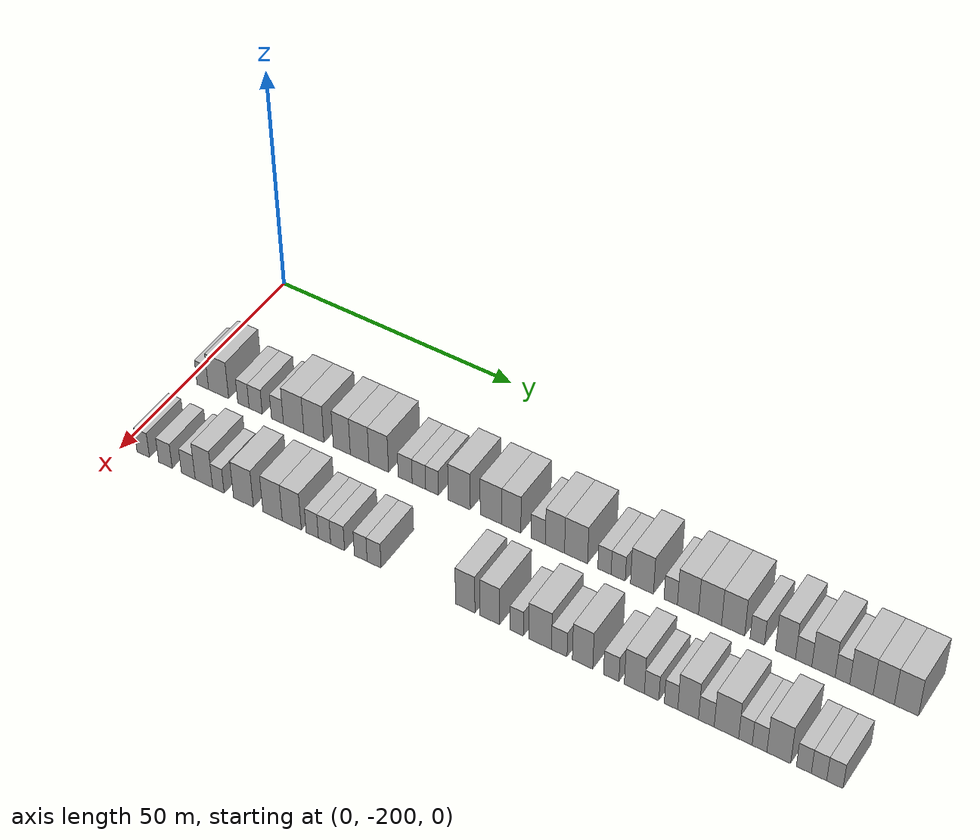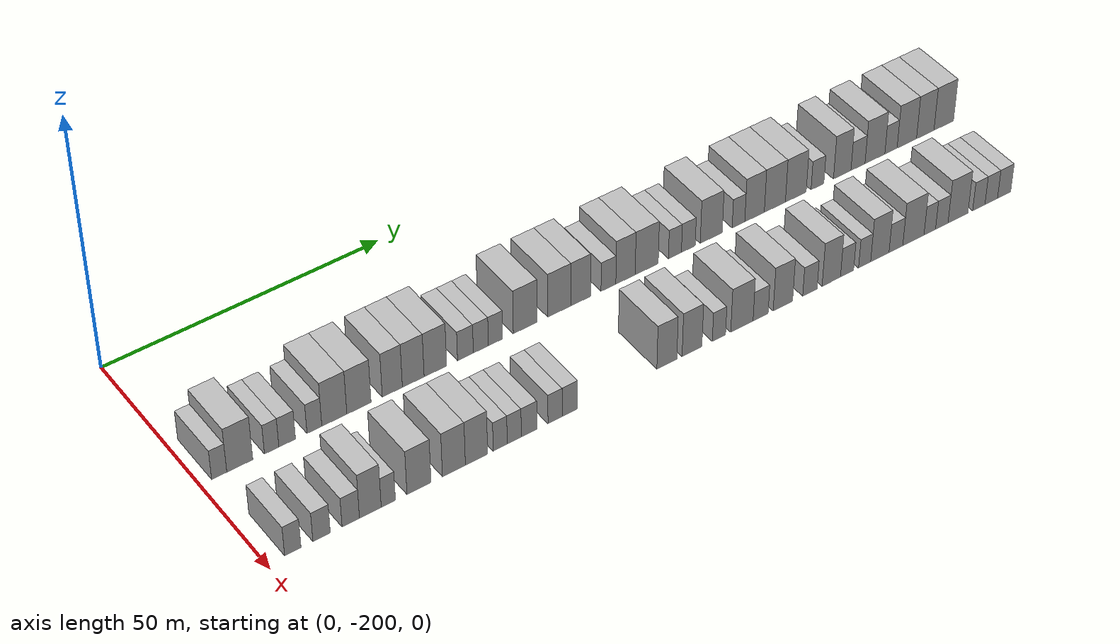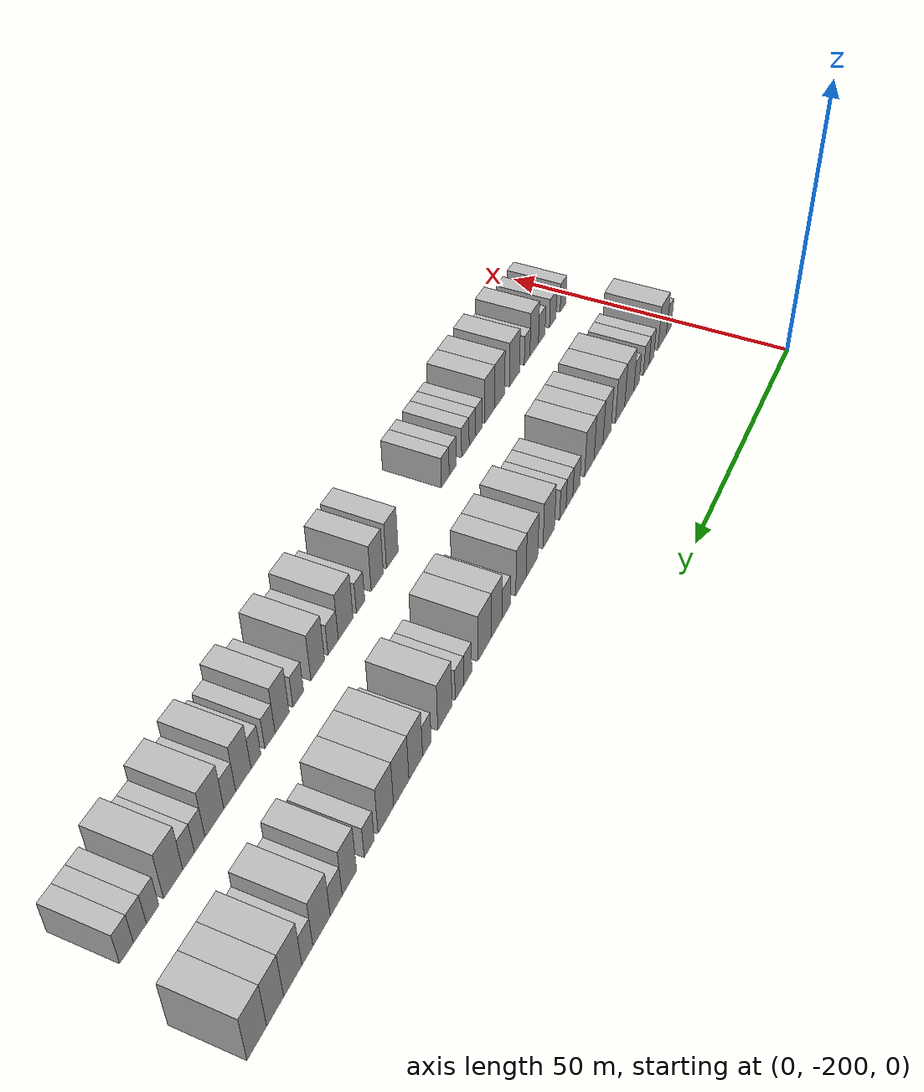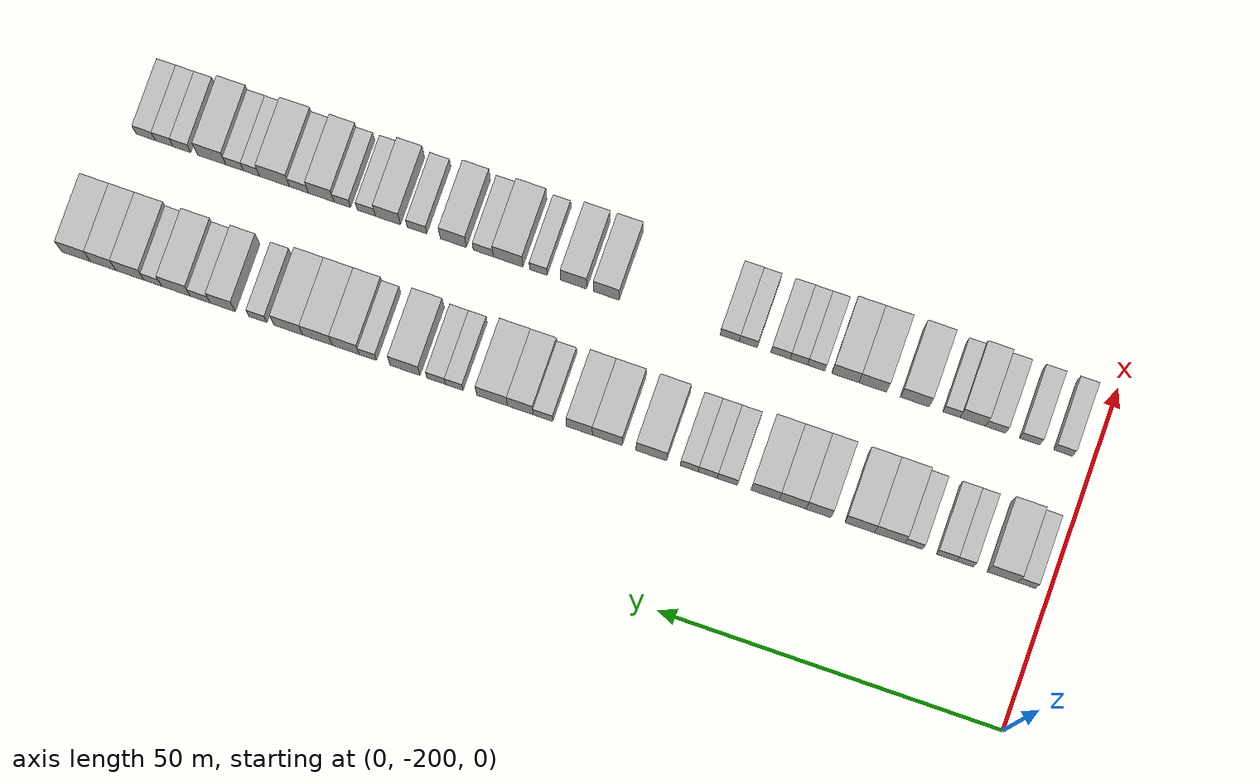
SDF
<sdf version="1.6">
 <world name="default">
  <model name="building_1">
   <static>1</static>
   <pose>25.0000 -196.7132 0 0.000000 0.000000 0.000000</pose>
   <link name="link">
    <pose>0 0 3.00 0 0 0</pose>
    <collision name="collision"><geometry><box><size>10.0000 2.5736 6.0000</size></box></geometry></collision>
    <visual name="visual">
     <cast_shadows>0</cast_shadows>
     <geometry><box><size>10.0000 2.5736 6.0000</size></box></geometry>
     <material>
      <script>
       <uri>model://HANNAS_wall/materials/scripts</uri>
       <uri>model://HANNAS_wall/materials/textures</uri>
       <name>vrc/HANNAS_wall</name>
      </script>
     </material>
    </visual>
   </link>
  </model>
  <model name="building_2">
   <static>1</static>
   <pose>25.0000 -193.2047 0 0.000000 0.000000 0.000000</pose>
   <link name="link">
    <pose>0 0 4.50 0 0 0</pose>
    <collision name="collision"><geometry><box><size>10.0000 4.4435 9.0000</size></box></geometry></collision>
    <visual name="visual">
     <cast_shadows>0</cast_shadows>
     <geometry><box><size>10.0000 4.4435 9.0000</size></box></geometry>
     <material>
      <script>
       <uri>model://HANNAS_wall/materials/scripts</uri>
       <uri>model://HANNAS_wall/materials/textures</uri>
       <name>vrc/HANNAS_wall</name>
      </script>
     </material>
    </visual>
   </link>
  </model>
  <model name="building_3">
   <static>1</static>
   <pose>25.0000 -187.7370 0 0.000000 0.000000 0.000000</pose>
   <link name="link">
    <pose>0 0 3.00 0 0 0</pose>
    <collision name="collision"><geometry><box><size>10.0000 2.4917 6.0000</size></box></geometry></collision>
    <visual name="visual">
     <cast_shadows>0</cast_shadows>
     <geometry><box><size>10.0000 2.4917 6.0000</size></box></geometry>
     <material>
      <script>
       <uri>model://HANNAS_wall/materials/scripts</uri>
       <uri>model://HANNAS_wall/materials/textures</uri>
       <name>vrc/HANNAS_wall</name>
      </script>
     </material>
    </visual>
   </link>
  </model>
  <model name="building_4">
   <static>1</static>
   <pose>25.0000 -185.0531 0 0.000000 0.000000 0.000000</pose>
   <link name="link">
    <pose>0 0 3.00 0 0 0</pose>
    <collision name="collision"><geometry><box><size>10.0000 2.8762 6.0000</size></box></geometry></collision>
    <visual name="visual">
     <cast_shadows>0</cast_shadows>
     <geometry><box><size>10.0000 2.8762 6.0000</size></box></geometry>
     <material>
      <script>
       <uri>model://HANNAS_wall/materials/scripts</uri>
       <uri>model://HANNAS_wall/materials/textures</uri>
       <name>vrc/HANNAS_wall</name>
      </script>
     </material>
    </visual>
   </link>
  </model>
  <model name="building_5">
   <static>1</static>
   <pose>25.0000 -180.3151 0 0.000000 0.000000 0.000000</pose>
   <link name="link">
    <pose>0 0 3.00 0 0 0</pose>
    <collision name="collision"><geometry><box><size>10.0000 2.5999 6.0000</size></box></geometry></collision>
    <visual name="visual">
     <cast_shadows>0</cast_shadows>
     <geometry><box><size>10.0000 2.5999 6.0000</size></box></geometry>
     <material>
      <script>
       <uri>model://HANNAS_wall/materials/scripts</uri>
       <uri>model://HANNAS_wall/materials/textures</uri>
       <name>vrc/HANNAS_wall</name>
      </script>
     </material>
    </visual>
   </link>
  </model>
  <model name="building_6">
   <static>1</static>
   <pose>25.0000 -176.8122 0 0.000000 0.000000 0.000000</pose>
   <link name="link">
    <pose>0 0 4.50 0 0 0</pose>
    <collision name="collision"><geometry><box><size>10.0000 4.4058 9.0000</size></box></geometry></collision>
    <visual name="visual">
     <cast_shadows>0</cast_shadows>
     <geometry><box><size>10.0000 4.4058 9.0000</size></box></geometry>
     <material>
      <script>
       <uri>model://HANNAS_wall/materials/scripts</uri>
       <uri>model://HANNAS_wall/materials/textures</uri>
       <name>vrc/HANNAS_wall</name>
      </script>
     </material>
    </visual>
   </link>
  </model>
  <model name="building_7">
   <static>1</static>
   <pose>25.0000 -172.4604 0 0.000000 0.000000 0.000000</pose>
   <link name="link">
    <pose>0 0 4.50 0 0 0</pose>
    <collision name="collision"><geometry><box><size>10.0000 4.2978 9.0000</size></box></geometry></collision>
    <visual name="visual">
     <cast_shadows>0</cast_shadows>
     <geometry><box><size>10.0000 4.2978 9.0000</size></box></geometry>
     <material>
      <script>
       <uri>model://HANNAS_wall/materials/scripts</uri>
       <uri>model://HANNAS_wall/materials/textures</uri>
       <name>vrc/HANNAS_wall</name>
      </script>
     </material>
    </visual>
   </link>
  </model>
  <model name="building_8">
   <static>1</static>
   <pose>25.0000 -166.5079 0 0.000000 0.000000 0.000000</pose>
   <link name="link">
    <pose>0 0 4.50 0 0 0</pose>
    <collision name="collision"><geometry><box><size>10.0000 3.6071 9.0000</size></box></geometry></collision>
    <visual name="visual">
     <cast_shadows>0</cast_shadows>
     <geometry><box><size>10.0000 3.6071 9.0000</size></box></geometry>
     <material>
      <script>
       <uri>model://HANNAS_wall/materials/scripts</uri>
       <uri>model://HANNAS_wall/materials/textures</uri>
       <name>vrc/HANNAS_wall</name>
      </script>
     </material>
    </visual>
   </link>
  </model>
  <model name="building_9">
   <static>1</static>
   <pose>25.0000 -162.7397 0 0.000000 0.000000 0.000000</pose>
   <link name="link">
    <pose>0 0 4.50 0 0 0</pose>
    <collision name="collision"><geometry><box><size>10.0000 3.9293 9.0000</size></box></geometry></collision>
    <visual name="visual">
     <cast_shadows>0</cast_shadows>
     <geometry><box><size>10.0000 3.9293 9.0000</size></box></geometry>
     <material>
      <script>
       <uri>model://HANNAS_wall/materials/scripts</uri>
       <uri>model://HANNAS_wall/materials/textures</uri>
       <name>vrc/HANNAS_wall</name>
      </script>
     </material>
    </visual>
   </link>
  </model>
  <model name="building_10">
   <static>1</static>
   <pose>25.0000 -158.7315 0 0.000000 0.000000 0.000000</pose>
   <link name="link">
    <pose>0 0 4.50 0 0 0</pose>
    <collision name="collision"><geometry><box><size>10.0000 4.0873 9.0000</size></box></geometry></collision>
    <visual name="visual">
     <cast_shadows>0</cast_shadows>
     <geometry><box><size>10.0000 4.0873 9.0000</size></box></geometry>
     <material>
      <script>
       <uri>model://HANNAS_wall/materials/scripts</uri>
       <uri>model://HANNAS_wall/materials/textures</uri>
       <name>vrc/HANNAS_wall</name>
      </script>
     </material>
    </visual>
   </link>
  </model>
  <model name="building_11">
   <static>1</static>
   <pose>25.0000 -153.2360 0 0.000000 0.000000 0.000000</pose>
   <link name="link">
    <pose>0 0 3.00 0 0 0</pose>
    <collision name="collision"><geometry><box><size>10.0000 2.9037 6.0000</size></box></geometry></collision>
    <visual name="visual">
     <cast_shadows>0</cast_shadows>
     <geometry><box><size>10.0000 2.9037 6.0000</size></box></geometry>
     <material>
      <script>
       <uri>model://HANNAS_wall/materials/scripts</uri>
       <uri>model://HANNAS_wall/materials/textures</uri>
       <name>vrc/HANNAS_wall</name>
      </script>
     </material>
    </visual>
   </link>
  </model>
  <model name="building_12">
   <static>1</static>
   <pose>25.0000 -150.3929 0 0.000000 0.000000 0.000000</pose>
   <link name="link">
    <pose>0 0 3.00 0 0 0</pose>
    <collision name="collision"><geometry><box><size>10.0000 2.7824 6.0000</size></box></geometry></collision>
    <visual name="visual">
     <cast_shadows>0</cast_shadows>
     <geometry><box><size>10.0000 2.7824 6.0000</size></box></geometry>
     <material>
      <script>
       <uri>model://HANNAS_wall/materials/scripts</uri>
       <uri>model://HANNAS_wall/materials/textures</uri>
       <name>vrc/HANNAS_wall</name>
      </script>
     </material>
    </visual>
   </link>
  </model>
  <model name="building_13">
   <static>1</static>
   <pose>25.0000 -147.6859 0 0.000000 0.000000 0.000000</pose>
   <link name="link">
    <pose>0 0 3.00 0 0 0</pose>
    <collision name="collision"><geometry><box><size>10.0000 2.6316 6.0000</size></box></geometry></collision>
    <visual name="visual">
     <cast_shadows>0</cast_shadows>
     <geometry><box><size>10.0000 2.6316 6.0000</size></box></geometry>
     <material>
      <script>
       <uri>model://HANNAS_wall/materials/scripts</uri>
       <uri>model://HANNAS_wall/materials/textures</uri>
       <name>vrc/HANNAS_wall</name>
      </script>
     </material>
    </visual>
   </link>
  </model>
  <model name="building_14">
   <static>1</static>
   <pose>25.0000 -142.1304 0 0.000000 0.000000 0.000000</pose>
   <link name="link">
    <pose>0 0 4.50 0 0 0</pose>
    <collision name="collision"><geometry><box><size>10.0000 4.4795 9.0000</size></box></geometry></collision>
    <visual name="visual">
     <cast_shadows>0</cast_shadows>
     <geometry><box><size>10.0000 4.4795 9.0000</size></box></geometry>
     <material>
      <script>
       <uri>model://HANNAS_wall/materials/scripts</uri>
       <uri>model://HANNAS_wall/materials/textures</uri>
       <name>vrc/HANNAS_wall</name>
      </script>
     </material>
    </visual>
   </link>
  </model>
  <model name="building_15">
   <static>1</static>
   <pose>25.0000 -135.7081 0 0.000000 0.000000 0.000000</pose>
   <link name="link">
    <pose>0 0 4.50 0 0 0</pose>
    <collision name="collision"><geometry><box><size>10.0000 4.3652 9.0000</size></box></geometry></collision>
    <visual name="visual">
     <cast_shadows>0</cast_shadows>
     <geometry><box><size>10.0000 4.3652 9.0000</size></box></geometry>
     <material>
      <script>
       <uri>model://HANNAS_wall/materials/scripts</uri>
       <uri>model://HANNAS_wall/materials/textures</uri>
       <name>vrc/HANNAS_wall</name>
      </script>
     </material>
    </visual>
   </link>
  </model>
  <model name="building_16">
   <static>1</static>
   <pose>25.0000 -131.6402 0 0.000000 0.000000 0.000000</pose>
   <link name="link">
    <pose>0 0 4.50 0 0 0</pose>
    <collision name="collision"><geometry><box><size>10.0000 3.7705 9.0000</size></box></geometry></collision>
    <visual name="visual">
     <cast_shadows>0</cast_shadows>
     <geometry><box><size>10.0000 3.7705 9.0000</size></box></geometry>
     <material>
      <script>
       <uri>model://HANNAS_wall/materials/scripts</uri>
       <uri>model://HANNAS_wall/materials/textures</uri>
       <name>vrc/HANNAS_wall</name>
      </script>
     </material>
    </visual>
   </link>
  </model>
  <model name="building_17">
   <static>1</static>
   <pose>25.0000 -126.3235 0 0.000000 0.000000 0.000000</pose>
   <link name="link">
    <pose>0 0 3.00 0 0 0</pose>
    <collision name="collision"><geometry><box><size>10.0000 2.8627 6.0000</size></box></geometry></collision>
    <visual name="visual">
     <cast_shadows>0</cast_shadows>
     <geometry><box><size>10.0000 2.8627 6.0000</size></box></geometry>
     <material>
      <script>
       <uri>model://HANNAS_wall/materials/scripts</uri>
       <uri>model://HANNAS_wall/materials/textures</uri>
       <name>vrc/HANNAS_wall</name>
      </script>
     </material>
    </visual>
   </link>
  </model>
  <model name="building_18">
   <static>1</static>
   <pose>25.0000 -123.0128 0 0.000000 0.000000 0.000000</pose>
   <link name="link">
    <pose>0 0 4.50 0 0 0</pose>
    <collision name="collision"><geometry><box><size>10.0000 3.7586 9.0000</size></box></geometry></collision>
    <visual name="visual">
     <cast_shadows>0</cast_shadows>
     <geometry><box><size>10.0000 3.7586 9.0000</size></box></geometry>
     <material>
      <script>
       <uri>model://HANNAS_wall/materials/scripts</uri>
       <uri>model://HANNAS_wall/materials/textures</uri>
       <name>vrc/HANNAS_wall</name>
      </script>
     </material>
    </visual>
   </link>
  </model>
  <model name="building_19">
   <static>1</static>
   <pose>25.0000 -118.8855 0 0.000000 0.000000 0.000000</pose>
   <link name="link">
    <pose>0 0 4.50 0 0 0</pose>
    <collision name="collision"><geometry><box><size>10.0000 4.4960 9.0000</size></box></geometry></collision>
    <visual name="visual">
     <cast_shadows>0</cast_shadows>
     <geometry><box><size>10.0000 4.4960 9.0000</size></box></geometry>
     <material>
      <script>
       <uri>model://HANNAS_wall/materials/scripts</uri>
       <uri>model://HANNAS_wall/materials/textures</uri>
       <name>vrc/HANNAS_wall</name>
      </script>
     </material>
    </visual>
   </link>
  </model>
  <model name="building_20">
   <static>1</static>
   <pose>25.0000 -113.3541 0 0.000000 0.000000 0.000000</pose>
   <link name="link">
    <pose>0 0 3.00 0 0 0</pose>
    <collision name="collision"><geometry><box><size>10.0000 2.5667 6.0000</size></box></geometry></collision>
    <visual name="visual">
     <cast_shadows>0</cast_shadows>
     <geometry><box><size>10.0000 2.5667 6.0000</size></box></geometry>
     <material>
      <script>
       <uri>model://HANNAS_wall/materials/scripts</uri>
       <uri>model://HANNAS_wall/materials/textures</uri>
       <name>vrc/HANNAS_wall</name>
      </script>
     </material>
    </visual>
   </link>
  </model>
  <model name="building_21">
   <static>1</static>
   <pose>25.0000 -110.7072 0 0.000000 0.000000 0.000000</pose>
   <link name="link">
    <pose>0 0 3.00 0 0 0</pose>
    <collision name="collision"><geometry><box><size>10.0000 2.7272 6.0000</size></box></geometry></collision>
    <visual name="visual">
     <cast_shadows>0</cast_shadows>
     <geometry><box><size>10.0000 2.7272 6.0000</size></box></geometry>
     <material>
      <script>
       <uri>model://HANNAS_wall/materials/scripts</uri>
       <uri>model://HANNAS_wall/materials/textures</uri>
       <name>vrc/HANNAS_wall</name>
      </script>
     </material>
    </visual>
   </link>
  </model>
  <model name="building_22">
   <static>1</static>
   <pose>25.0000 -106.1514 0 0.000000 0.000000 0.000000</pose>
   <link name="link">
    <pose>0 0 4.50 0 0 0</pose>
    <collision name="collision"><geometry><box><size>10.0000 4.3845 9.0000</size></box></geometry></collision>
    <visual name="visual">
     <cast_shadows>0</cast_shadows>
     <geometry><box><size>10.0000 4.3845 9.0000</size></box></geometry>
     <material>
      <script>
       <uri>model://HANNAS_wall/materials/scripts</uri>
       <uri>model://HANNAS_wall/materials/textures</uri>
       <name>vrc/HANNAS_wall</name>
      </script>
     </material>
    </visual>
   </link>
  </model>
  <model name="building_23">
   <static>1</static>
   <pose>25.0000 -100.6900 0 0.000000 0.000000 0.000000</pose>
   <link name="link">
    <pose>0 0 3.00 0 0 0</pose>
    <collision name="collision"><geometry><box><size>10.0000 2.5384 6.0000</size></box></geometry></collision>
    <visual name="visual">
     <cast_shadows>0</cast_shadows>
     <geometry><box><size>10.0000 2.5384 6.0000</size></box></geometry>
     <material>
      <script>
       <uri>model://HANNAS_wall/materials/scripts</uri>
       <uri>model://HANNAS_wall/materials/textures</uri>
       <name>vrc/HANNAS_wall</name>
      </script>
     </material>
    </visual>
   </link>
  </model>
  <model name="building_24">
   <static>1</static>
   <pose>25.0000 -97.4387 0 0.000000 0.000000 0.000000</pose>
   <link name="link">
    <pose>0 0 4.50 0 0 0</pose>
    <collision name="collision"><geometry><box><size>10.0000 3.9641 9.0000</size></box></geometry></collision>
    <visual name="visual">
     <cast_shadows>0</cast_shadows>
     <geometry><box><size>10.0000 3.9641 9.0000</size></box></geometry>
     <material>
      <script>
       <uri>model://HANNAS_wall/materials/scripts</uri>
       <uri>model://HANNAS_wall/materials/textures</uri>
       <name>vrc/HANNAS_wall</name>
      </script>
     </material>
    </visual>
   </link>
  </model>
  <model name="building_25">
   <static>1</static>
   <pose>25.0000 -93.3050 0 0.000000 0.000000 0.000000</pose>
   <link name="link">
    <pose>0 0 4.50 0 0 0</pose>
    <collision name="collision"><geometry><box><size>10.0000 4.3034 9.0000</size></box></geometry></collision>
    <visual name="visual">
     <cast_shadows>0</cast_shadows>
     <geometry><box><size>10.0000 4.3034 9.0000</size></box></geometry>
     <material>
      <script>
       <uri>model://HANNAS_wall/materials/scripts</uri>
       <uri>model://HANNAS_wall/materials/textures</uri>
       <name>vrc/HANNAS_wall</name>
      </script>
     </material>
    </visual>
   </link>
  </model>
  <model name="building_26">
   <static>1</static>
   <pose>25.0000 -89.0119 0 0.000000 0.000000 0.000000</pose>
   <link name="link">
    <pose>0 0 4.50 0 0 0</pose>
    <collision name="collision"><geometry><box><size>10.0000 4.2827 9.0000</size></box></geometry></collision>
    <visual name="visual">
     <cast_shadows>0</cast_shadows>
     <geometry><box><size>10.0000 4.2827 9.0000</size></box></geometry>
     <material>
      <script>
       <uri>model://HANNAS_wall/materials/scripts</uri>
       <uri>model://HANNAS_wall/materials/textures</uri>
       <name>vrc/HANNAS_wall</name>
      </script>
     </material>
    </visual>
   </link>
  </model>
  <model name="building_27">
   <static>1</static>
   <pose>25.0000 -84.5455 0 0.000000 0.000000 0.000000</pose>
   <link name="link">
    <pose>0 0 3.00 0 0 0</pose>
    <collision name="collision"><geometry><box><size>10.0000 2.6500 6.0000</size></box></geometry></collision>
    <visual name="visual">
     <cast_shadows>0</cast_shadows>
     <geometry><box><size>10.0000 2.6500 6.0000</size></box></geometry>
     <material>
      <script>
       <uri>model://HANNAS_wall/materials/scripts</uri>
       <uri>model://HANNAS_wall/materials/textures</uri>
       <name>vrc/HANNAS_wall</name>
      </script>
     </material>
    </visual>
   </link>
  </model>
  <model name="building_28">
   <static>1</static>
   <pose>25.0000 -79.3932 0 0.000000 0.000000 0.000000</pose>
   <link name="link">
    <pose>0 0 4.50 0 0 0</pose>
    <collision name="collision"><geometry><box><size>10.0000 3.6547 9.0000</size></box></geometry></collision>
    <visual name="visual">
     <cast_shadows>0</cast_shadows>
     <geometry><box><size>10.0000 3.6547 9.0000</size></box></geometry>
     <material>
      <script>
       <uri>model://HANNAS_wall/materials/scripts</uri>
       <uri>model://HANNAS_wall/materials/textures</uri>
       <name>vrc/HANNAS_wall</name>
      </script>
     </material>
    </visual>
   </link>
  </model>
  <model name="building_29">
   <static>1</static>
   <pose>25.0000 -76.0867 0 0.000000 0.000000 0.000000</pose>
   <link name="link">
    <pose>0 0 3.00 0 0 0</pose>
    <collision name="collision"><geometry><box><size>10.0000 2.9583 6.0000</size></box></geometry></collision>
    <visual name="visual">
     <cast_shadows>0</cast_shadows>
     <geometry><box><size>10.0000 2.9583 6.0000</size></box></geometry>
     <material>
      <script>
       <uri>model://HANNAS_wall/materials/scripts</uri>
       <uri>model://HANNAS_wall/materials/textures</uri>
       <name>vrc/HANNAS_wall</name>
      </script>
     </material>
    </visual>
   </link>
  </model>
  <model name="building_30">
   <static>1</static>
   <pose>25.0000 -72.5102 0 0.000000 0.000000 0.000000</pose>
   <link name="link">
    <pose>0 0 4.50 0 0 0</pose>
    <collision name="collision"><geometry><box><size>10.0000 4.1946 9.0000</size></box></geometry></collision>
    <visual name="visual">
     <cast_shadows>0</cast_shadows>
     <geometry><box><size>10.0000 4.1946 9.0000</size></box></geometry>
     <material>
      <script>
       <uri>model://HANNAS_wall/materials/scripts</uri>
       <uri>model://HANNAS_wall/materials/textures</uri>
       <name>vrc/HANNAS_wall</name>
      </script>
     </material>
    </visual>
   </link>
  </model>
  <model name="building_31">
   <static>1</static>
   <pose>25.0000 -69.1116 0 0.000000 0.000000 0.000000</pose>
   <link name="link">
    <pose>0 0 3.00 0 0 0</pose>
    <collision name="collision"><geometry><box><size>10.0000 2.6026 6.0000</size></box></geometry></collision>
    <visual name="visual">
     <cast_shadows>0</cast_shadows>
     <geometry><box><size>10.0000 2.6026 6.0000</size></box></geometry>
     <material>
      <script>
       <uri>model://HANNAS_wall/materials/scripts</uri>
       <uri>model://HANNAS_wall/materials/textures</uri>
       <name>vrc/HANNAS_wall</name>
      </script>
     </material>
    </visual>
   </link>
  </model>
  <model name="building_32">
   <static>1</static>
   <pose>25.0000 -65.7340 0 0.000000 0.000000 0.000000</pose>
   <link name="link">
    <pose>0 0 4.50 0 0 0</pose>
    <collision name="collision"><geometry><box><size>10.0000 4.1526 9.0000</size></box></geometry></collision>
    <visual name="visual">
     <cast_shadows>0</cast_shadows>
     <geometry><box><size>10.0000 4.1526 9.0000</size></box></geometry>
     <material>
      <script>
       <uri>model://HANNAS_wall/materials/scripts</uri>
       <uri>model://HANNAS_wall/materials/textures</uri>
       <name>vrc/HANNAS_wall</name>
      </script>
     </material>
    </visual>
   </link>
  </model>
  <model name="building_33">
   <static>1</static>
   <pose>25.0000 -61.7794 0 0.000000 0.000000 0.000000</pose>
   <link name="link">
    <pose>0 0 4.50 0 0 0</pose>
    <collision name="collision"><geometry><box><size>10.0000 3.7566 9.0000</size></box></geometry></collision>
    <visual name="visual">
     <cast_shadows>0</cast_shadows>
     <geometry><box><size>10.0000 3.7566 9.0000</size></box></geometry>
     <material>
      <script>
       <uri>model://HANNAS_wall/materials/scripts</uri>
       <uri>model://HANNAS_wall/materials/textures</uri>
       <name>vrc/HANNAS_wall</name>
      </script>
     </material>
    </visual>
   </link>
  </model>
  <model name="building_34">
   <static>1</static>
   <pose>25.0000 -57.7851 0 0.000000 0.000000 0.000000</pose>
   <link name="link">
    <pose>0 0 4.50 0 0 0</pose>
    <collision name="collision"><geometry><box><size>10.0000 4.2321 9.0000</size></box></geometry></collision>
    <visual name="visual">
     <cast_shadows>0</cast_shadows>
     <geometry><box><size>10.0000 4.2321 9.0000</size></box></geometry>
     <material>
      <script>
       <uri>model://HANNAS_wall/materials/scripts</uri>
       <uri>model://HANNAS_wall/materials/textures</uri>
       <name>vrc/HANNAS_wall</name>
      </script>
     </material>
    </visual>
   </link>
  </model>
  <model name="building_101">
   <static>1</static>
   <pose>44.0000 -195.6258 0 0.000000 0.000000 0.000000</pose>
   <link name="link">
    <pose>0 0 3.00 0 0 0</pose>
    <collision name="collision"><geometry><box><size>10.0000 2.7484 6.0000</size></box></geometry></collision>
    <visual name="visual">
     <cast_shadows>0</cast_shadows>
     <geometry><box><size>10.0000 2.7484 6.0000</size></box></geometry>
     <material>
      <script>
       <uri>model://HANNAS_wall/materials/scripts</uri>
       <uri>model://HANNAS_wall/materials/textures</uri>
       <name>vrc/HANNAS_wall</name>
      </script>
     </material>
    </visual>
   </link>
  </model>
  <model name="building_102">
   <static>1</static>
   <pose>44.0000 -190.7808 0 0.000000 0.000000 0.000000</pose>
   <link name="link">
    <pose>0 0 3.00 0 0 0</pose>
    <collision name="collision"><geometry><box><size>10.0000 2.9414 6.0000</size></box></geometry></collision>
    <visual name="visual">
     <cast_shadows>0</cast_shadows>
     <geometry><box><size>10.0000 2.9414 6.0000</size></box></geometry>
     <material>
      <script>
       <uri>model://HANNAS_wall/materials/scripts</uri>
       <uri>model://HANNAS_wall/materials/textures</uri>
       <name>vrc/HANNAS_wall</name>
      </script>
     </material>
    </visual>
   </link>
  </model>
  <model name="building_103">
   <static>1</static>
   <pose>44.0000 -185.8272 0 0.000000 0.000000 0.000000</pose>
   <link name="link">
    <pose>0 0 3.00 0 0 0</pose>
    <collision name="collision"><geometry><box><size>10.0000 2.9658 6.0000</size></box></geometry></collision>
    <visual name="visual">
     <cast_shadows>0</cast_shadows>
     <geometry><box><size>10.0000 2.9658 6.0000</size></box></geometry>
     <material>
      <script>
       <uri>model://HANNAS_wall/materials/scripts</uri>
       <uri>model://HANNAS_wall/materials/textures</uri>
       <name>vrc/HANNAS_wall</name>
      </script>
     </material>
    </visual>
   </link>
  </model>
  <model name="building_104">
   <static>1</static>
   <pose>44.0000 -182.4751 0 0.000000 0.000000 0.000000</pose>
   <link name="link">
    <pose>0 0 4.50 0 0 0</pose>
    <collision name="collision"><geometry><box><size>10.0000 3.7385 9.0000</size></box></geometry></collision>
    <visual name="visual">
     <cast_shadows>0</cast_shadows>
     <geometry><box><size>10.0000 3.7385 9.0000</size></box></geometry>
     <material>
      <script>
       <uri>model://HANNAS_wall/materials/scripts</uri>
       <uri>model://HANNAS_wall/materials/textures</uri>
       <name>vrc/HANNAS_wall</name>
      </script>
     </material>
    </visual>
   </link>
  </model>
  <model name="building_105">
   <static>1</static>
   <pose>44.0000 -179.3778 0 0.000000 0.000000 0.000000</pose>
   <link name="link">
    <pose>0 0 3.00 0 0 0</pose>
    <collision name="collision"><geometry><box><size>10.0000 2.4561 6.0000</size></box></geometry></collision>
    <visual name="visual">
     <cast_shadows>0</cast_shadows>
     <geometry><box><size>10.0000 2.4561 6.0000</size></box></geometry>
     <material>
      <script>
       <uri>model://HANNAS_wall/materials/scripts</uri>
       <uri>model://HANNAS_wall/materials/textures</uri>
       <name>vrc/HANNAS_wall</name>
      </script>
     </material>
    </visual>
   </link>
  </model>
  <model name="building_106">
   <static>1</static>
   <pose>44.0000 -174.0493 0 0.000000 0.000000 0.000000</pose>
   <link name="link">
    <pose>0 0 4.50 0 0 0</pose>
    <collision name="collision"><geometry><box><size>10.0000 4.2009 9.0000</size></box></geometry></collision>
    <visual name="visual">
     <cast_shadows>0</cast_shadows>
     <geometry><box><size>10.0000 4.2009 9.0000</size></box></geometry>
     <material>
      <script>
       <uri>model://HANNAS_wall/materials/scripts</uri>
       <uri>model://HANNAS_wall/materials/textures</uri>
       <name>vrc/HANNAS_wall</name>
      </script>
     </material>
    </visual>
   </link>
  </model>
  <model name="building_107">
   <static>1</static>
   <pose>44.0000 -167.9230 0 0.000000 0.000000 0.000000</pose>
   <link name="link">
    <pose>0 0 4.50 0 0 0</pose>
    <collision name="collision"><geometry><box><size>10.0000 4.0517 9.0000</size></box></geometry></collision>
    <visual name="visual">
     <cast_shadows>0</cast_shadows>
     <geometry><box><size>10.0000 4.0517 9.0000</size></box></geometry>
     <material>
      <script>
       <uri>model://HANNAS_wall/materials/scripts</uri>
       <uri>model://HANNAS_wall/materials/textures</uri>
       <name>vrc/HANNAS_wall</name>
      </script>
     </material>
    </visual>
   </link>
  </model>
  <model name="building_108">
   <static>1</static>
   <pose>44.0000 -163.9190 0 0.000000 0.000000 0.000000</pose>
   <link name="link">
    <pose>0 0 4.50 0 0 0</pose>
    <collision name="collision"><geometry><box><size>10.0000 3.9563 9.0000</size></box></geometry></collision>
    <visual name="visual">
     <cast_shadows>0</cast_shadows>
     <geometry><box><size>10.0000 3.9563 9.0000</size></box></geometry>
     <material>
      <script>
       <uri>model://HANNAS_wall/materials/scripts</uri>
       <uri>model://HANNAS_wall/materials/textures</uri>
       <name>vrc/HANNAS_wall</name>
      </script>
     </material>
    </visual>
   </link>
  </model>
  <model name="building_109">
   <static>1</static>
   <pose>44.0000 -159.6840 0 0.000000 0.000000 0.000000</pose>
   <link name="link">
    <pose>0 0 3.00 0 0 0</pose>
    <collision name="collision"><geometry><box><size>10.0000 2.5137 6.0000</size></box></geometry></collision>
    <visual name="visual">
     <cast_shadows>0</cast_shadows>
     <geometry><box><size>10.0000 2.5137 6.0000</size></box></geometry>
     <material>
      <script>
       <uri>model://HANNAS_wall/materials/scripts</uri>
       <uri>model://HANNAS_wall/materials/textures</uri>
       <name>vrc/HANNAS_wall</name>
      </script>
     </material>
    </visual>
   </link>
  </model>
  <model name="building_110">
   <static>1</static>
   <pose>44.0000 -157.1580 0 0.000000 0.000000 0.000000</pose>
   <link name="link">
    <pose>0 0 3.00 0 0 0</pose>
    <collision name="collision"><geometry><box><size>10.0000 2.5383 6.0000</size></box></geometry></collision>
    <visual name="visual">
     <cast_shadows>0</cast_shadows>
     <geometry><box><size>10.0000 2.5383 6.0000</size></box></geometry>
     <material>
      <script>
       <uri>model://HANNAS_wall/materials/scripts</uri>
       <uri>model://HANNAS_wall/materials/textures</uri>
       <name>vrc/HANNAS_wall</name>
      </script>
     </material>
    </visual>
   </link>
  </model>
  <model name="building_111">
   <static>1</static>
   <pose>44.0000 -154.4722 0 0.000000 0.000000 0.000000</pose>
   <link name="link">
    <pose>0 0 3.00 0 0 0</pose>
    <collision name="collision"><geometry><box><size>10.0000 2.8334 6.0000</size></box></geometry></collision>
    <visual name="visual">
     <cast_shadows>0</cast_shadows>
     <geometry><box><size>10.0000 2.8334 6.0000</size></box></geometry>
     <material>
      <script>
       <uri>model://HANNAS_wall/materials/scripts</uri>
       <uri>model://HANNAS_wall/materials/textures</uri>
       <name>vrc/HANNAS_wall</name>
      </script>
     </material>
    </visual>
   </link>
  </model>
  <model name="building_112">
   <static>1</static>
   <pose>44.0000 -149.7612 0 0.000000 0.000000 0.000000</pose>
   <link name="link">
    <pose>0 0 3.00 0 0 0</pose>
    <collision name="collision"><geometry><box><size>10.0000 2.5886 6.0000</size></box></geometry></collision>
    <visual name="visual">
     <cast_shadows>0</cast_shadows>
     <geometry><box><size>10.0000 2.5886 6.0000</size></box></geometry>
     <material>
      <script>
       <uri>model://HANNAS_wall/materials/scripts</uri>
       <uri>model://HANNAS_wall/materials/textures</uri>
       <name>vrc/HANNAS_wall</name>
      </script>
     </material>
    </visual>
   </link>
  </model>
  <model name="building_113">
   <static>1</static>
   <pose>44.0000 -147.0568 0 0.000000 0.000000 0.000000</pose>
   <link name="link">
    <pose>0 0 3.00 0 0 0</pose>
    <collision name="collision"><geometry><box><size>10.0000 2.8203 6.0000</size></box></geometry></collision>
    <visual name="visual">
     <cast_shadows>0</cast_shadows>
     <geometry><box><size>10.0000 2.8203 6.0000</size></box></geometry>
     <material>
      <script>
       <uri>model://HANNAS_wall/materials/scripts</uri>
       <uri>model://HANNAS_wall/materials/textures</uri>
       <name>vrc/HANNAS_wall</name>
      </script>
     </material>
    </visual>
   </link>
  </model>
  <model name="building_114">
   <static>1</static>
   <pose>44.0000 -128.9651 0 0.000000 0.000000 0.000000</pose>
   <link name="link">
    <pose>0 0 4.50 0 0 0</pose>
    <collision name="collision"><geometry><box><size>10.0000 3.7877 9.0000</size></box></geometry></collision>
    <visual name="visual">
     <cast_shadows>0</cast_shadows>
     <geometry><box><size>10.0000 3.7877 9.0000</size></box></geometry>
     <material>
      <script>
       <uri>model://HANNAS_wall/materials/scripts</uri>
       <uri>model://HANNAS_wall/materials/textures</uri>
       <name>vrc/HANNAS_wall</name>
      </script>
     </material>
    </visual>
   </link>
  </model>
  <model name="building_115">
   <static>1</static>
   <pose>44.0000 -124.1739 0 0.000000 0.000000 0.000000</pose>
   <link name="link">
    <pose>0 0 4.50 0 0 0</pose>
    <collision name="collision"><geometry><box><size>10.0000 3.7948 9.0000</size></box></geometry></collision>
    <visual name="visual">
     <cast_shadows>0</cast_shadows>
     <geometry><box><size>10.0000 3.7948 9.0000</size></box></geometry>
     <material>
      <script>
       <uri>model://HANNAS_wall/materials/scripts</uri>
       <uri>model://HANNAS_wall/materials/textures</uri>
       <name>vrc/HANNAS_wall</name>
      </script>
     </material>
    </visual>
   </link>
  </model>
  <model name="building_116">
   <static>1</static>
   <pose>44.0000 -118.9993 0 0.000000 0.000000 0.000000</pose>
   <link name="link">
    <pose>0 0 3.00 0 0 0</pose>
    <collision name="collision"><geometry><box><size>10.0000 2.5544 6.0000</size></box></geometry></collision>
    <visual name="visual">
     <cast_shadows>0</cast_shadows>
     <geometry><box><size>10.0000 2.5544 6.0000</size></box></geometry>
     <material>
      <script>
       <uri>model://HANNAS_wall/materials/scripts</uri>
       <uri>model://HANNAS_wall/materials/textures</uri>
       <name>vrc/HANNAS_wall</name>
      </script>
     </material>
    </visual>
   </link>
  </model>
  <model name="building_117">
   <static>1</static>
   <pose>44.0000 -114.5480 0 0.000000 0.000000 0.000000</pose>
   <link name="link">
    <pose>0 0 4.50 0 0 0</pose>
    <collision name="collision"><geometry><box><size>10.0000 4.3482 9.0000</size></box></geometry></collision>
    <visual name="visual">
     <cast_shadows>0</cast_shadows>
     <geometry><box><size>10.0000 4.3482 9.0000</size></box></geometry>
     <material>
      <script>
       <uri>model://HANNAS_wall/materials/scripts</uri>
       <uri>model://HANNAS_wall/materials/textures</uri>
       <name>vrc/HANNAS_wall</name>
      </script>
     </material>
    </visual>
   </link>
  </model>
  <model name="building_118">
   <static>1</static>
   <pose>44.0000 -110.9013 0 0.000000 0.000000 0.000000</pose>
   <link name="link">
    <pose>0 0 3.00 0 0 0</pose>
    <collision name="collision"><geometry><box><size>10.0000 2.9452 6.0000</size></box></geometry></collision>
    <visual name="visual">
     <cast_shadows>0</cast_shadows>
     <geometry><box><size>10.0000 2.9452 6.0000</size></box></geometry>
     <material>
      <script>
       <uri>model://HANNAS_wall/materials/scripts</uri>
       <uri>model://HANNAS_wall/materials/textures</uri>
       <name>vrc/HANNAS_wall</name>
      </script>
     </material>
    </visual>
   </link>
  </model>
  <model name="building_119">
   <static>1</static>
   <pose>44.0000 -106.5105 0 0.000000 0.000000 0.000000</pose>
   <link name="link">
    <pose>0 0 4.50 0 0 0</pose>
    <collision name="collision"><geometry><box><size>10.0000 3.8364 9.0000</size></box></geometry></collision>
    <visual name="visual">
     <cast_shadows>0</cast_shadows>
     <geometry><box><size>10.0000 3.8364 9.0000</size></box></geometry>
     <material>
      <script>
       <uri>model://HANNAS_wall/materials/scripts</uri>
       <uri>model://HANNAS_wall/materials/textures</uri>
       <name>vrc/HANNAS_wall</name>
      </script>
     </material>
    </visual>
   </link>
  </model>
  <model name="building_120">
   <static>1</static>
   <pose>44.0000 -101.1586 0 0.000000 0.000000 0.000000</pose>
   <link name="link">
    <pose>0 0 3.00 0 0 0</pose>
    <collision name="collision"><geometry><box><size>10.0000 2.8673 6.0000</size></box></geometry></collision>
    <visual name="visual">
     <cast_shadows>0</cast_shadows>
     <geometry><box><size>10.0000 2.8673 6.0000</size></box></geometry>
     <material>
      <script>
       <uri>model://HANNAS_wall/materials/scripts</uri>
       <uri>model://HANNAS_wall/materials/textures</uri>
       <name>vrc/HANNAS_wall</name>
      </script>
     </material>
    </visual>
   </link>
  </model>
  <model name="building_121">
   <static>1</static>
   <pose>44.0000 -96.8771 0 0.000000 0.000000 0.000000</pose>
   <link name="link">
    <pose>0 0 4.50 0 0 0</pose>
    <collision name="collision"><geometry><box><size>10.0000 3.6955 9.0000</size></box></geometry></collision>
    <visual name="visual">
     <cast_shadows>0</cast_shadows>
     <geometry><box><size>10.0000 3.6955 9.0000</size></box></geometry>
     <material>
      <script>
       <uri>model://HANNAS_wall/materials/scripts</uri>
       <uri>model://HANNAS_wall/materials/textures</uri>
       <name>vrc/HANNAS_wall</name>
      </script>
     </material>
    </visual>
   </link>
  </model>
  <model name="building_122">
   <static>1</static>
   <pose>44.0000 -93.7048 0 0.000000 0.000000 0.000000</pose>
   <link name="link">
    <pose>0 0 3.00 0 0 0</pose>
    <collision name="collision"><geometry><box><size>10.0000 2.6491 6.0000</size></box></geometry></collision>
    <visual name="visual">
     <cast_shadows>0</cast_shadows>
     <geometry><box><size>10.0000 2.6491 6.0000</size></box></geometry>
     <material>
      <script>
       <uri>model://HANNAS_wall/materials/scripts</uri>
       <uri>model://HANNAS_wall/materials/textures</uri>
       <name>vrc/HANNAS_wall</name>
      </script>
     </material>
    </visual>
   </link>
  </model>
  <model name="building_123">
   <static>1</static>
   <pose>44.0000 -90.1506 0 0.000000 0.000000 0.000000</pose>
   <link name="link">
    <pose>0 0 3.00 0 0 0</pose>
    <collision name="collision"><geometry><box><size>10.0000 2.4593 6.0000</size></box></geometry></collision>
    <visual name="visual">
     <cast_shadows>0</cast_shadows>
     <geometry><box><size>10.0000 2.4593 6.0000</size></box></geometry>
     <material>
      <script>
       <uri>model://HANNAS_wall/materials/scripts</uri>
       <uri>model://HANNAS_wall/materials/textures</uri>
       <name>vrc/HANNAS_wall</name>
      </script>
     </material>
    </visual>
   </link>
  </model>
  <model name="building_124">
   <static>1</static>
   <pose>44.0000 -87.0476 0 0.000000 0.000000 0.000000</pose>
   <link name="link">
    <pose>0 0 4.50 0 0 0</pose>
    <collision name="collision"><geometry><box><size>10.0000 3.7466 9.0000</size></box></geometry></collision>
    <visual name="visual">
     <cast_shadows>0</cast_shadows>
     <geometry><box><size>10.0000 3.7466 9.0000</size></box></geometry>
     <material>
      <script>
       <uri>model://HANNAS_wall/materials/scripts</uri>
       <uri>model://HANNAS_wall/materials/textures</uri>
       <name>vrc/HANNAS_wall</name>
      </script>
     </material>
    </visual>
   </link>
  </model>
  <model name="building_125">
   <static>1</static>
   <pose>44.0000 -83.7594 0 0.000000 0.000000 0.000000</pose>
   <link name="link">
    <pose>0 0 3.00 0 0 0</pose>
    <collision name="collision"><geometry><box><size>10.0000 2.8299 6.0000</size></box></geometry></collision>
    <visual name="visual">
     <cast_shadows>0</cast_shadows>
     <geometry><box><size>10.0000 2.8299 6.0000</size></box></geometry>
     <material>
      <script>
       <uri>model://HANNAS_wall/materials/scripts</uri>
       <uri>model://HANNAS_wall/materials/textures</uri>
       <name>vrc/HANNAS_wall</name>
      </script>
     </material>
    </visual>
   </link>
  </model>
  <model name="building_126">
   <static>1</static>
   <pose>44.0000 -80.1513 0 0.000000 0.000000 0.000000</pose>
   <link name="link">
    <pose>0 0 4.50 0 0 0</pose>
    <collision name="collision"><geometry><box><size>10.0000 4.3863 9.0000</size></box></geometry></collision>
    <visual name="visual">
     <cast_shadows>0</cast_shadows>
     <geometry><box><size>10.0000 4.3863 9.0000</size></box></geometry>
     <material>
      <script>
       <uri>model://HANNAS_wall/materials/scripts</uri>
       <uri>model://HANNAS_wall/materials/textures</uri>
       <name>vrc/HANNAS_wall</name>
      </script>
     </material>
    </visual>
   </link>
  </model>
  <model name="building_127">
   <static>1</static>
   <pose>44.0000 -76.7580 0 0.000000 0.000000 0.000000</pose>
   <link name="link">
    <pose>0 0 3.00 0 0 0</pose>
    <collision name="collision"><geometry><box><size>10.0000 2.4002 6.0000</size></box></geometry></collision>
    <visual name="visual">
     <cast_shadows>0</cast_shadows>
     <geometry><box><size>10.0000 2.4002 6.0000</size></box></geometry>
     <material>
      <script>
       <uri>model://HANNAS_wall/materials/scripts</uri>
       <uri>model://HANNAS_wall/materials/textures</uri>
       <name>vrc/HANNAS_wall</name>
      </script>
     </material>
    </visual>
   </link>
  </model>
  <model name="building_128">
   <static>1</static>
   <pose>44.0000 -74.2587 0 0.000000 0.000000 0.000000</pose>
   <link name="link">
    <pose>0 0 3.00 0 0 0</pose>
    <collision name="collision"><geometry><box><size>10.0000 2.5985 6.0000</size></box></geometry></collision>
    <visual name="visual">
     <cast_shadows>0</cast_shadows>
     <geometry><box><size>10.0000 2.5985 6.0000</size></box></geometry>
     <material>
      <script>
       <uri>model://HANNAS_wall/materials/scripts</uri>
       <uri>model://HANNAS_wall/materials/textures</uri>
       <name>vrc/HANNAS_wall</name>
      </script>
     </material>
    </visual>
   </link>
  </model>
  <model name="building_129">
   <static>1</static>
   <pose>44.0000 -70.8679 0 0.000000 0.000000 0.000000</pose>
   <link name="link">
    <pose>0 0 4.50 0 0 0</pose>
    <collision name="collision"><geometry><box><size>10.0000 4.1830 9.0000</size></box></geometry></collision>
    <visual name="visual">
     <cast_shadows>0</cast_shadows>
     <geometry><box><size>10.0000 4.1830 9.0000</size></box></geometry>
     <material>
      <script>
       <uri>model://HANNAS_wall/materials/scripts</uri>
       <uri>model://HANNAS_wall/materials/textures</uri>
       <name>vrc/HANNAS_wall</name>
      </script>
     </material>
    </visual>
   </link>
  </model>
  <model name="building_130">
   <static>1</static>
   <pose>44.0000 -66.4723 0 0.000000 0.000000 0.000000</pose>
   <link name="link">
    <pose>0 0 3.00 0 0 0</pose>
    <collision name="collision"><geometry><box><size>10.0000 2.6083 6.0000</size></box></geometry></collision>
    <visual name="visual">
     <cast_shadows>0</cast_shadows>
     <geometry><box><size>10.0000 2.6083 6.0000</size></box></geometry>
     <material>
      <script>
       <uri>model://HANNAS_wall/materials/scripts</uri>
       <uri>model://HANNAS_wall/materials/textures</uri>
       <name>vrc/HANNAS_wall</name>
      </script>
     </material>
    </visual>
   </link>
  </model>
  <model name="building_131">
   <static>1</static>
   <pose>44.0000 -63.8348 0 0.000000 0.000000 0.000000</pose>
   <link name="link">
    <pose>0 0 3.00 0 0 0</pose>
    <collision name="collision"><geometry><box><size>10.0000 2.6666 6.0000</size></box></geometry></collision>
    <visual name="visual">
     <cast_shadows>0</cast_shadows>
     <geometry><box><size>10.0000 2.6666 6.0000</size></box></geometry>
     <material>
      <script>
       <uri>model://HANNAS_wall/materials/scripts</uri>
       <uri>model://HANNAS_wall/materials/textures</uri>
       <name>vrc/HANNAS_wall</name>
      </script>
     </material>
    </visual>
   </link>
  </model>
  <model name="building_132">
   <static>1</static>
   <pose>44.0000 -61.0940 0 0.000000 0.000000 0.000000</pose>
   <link name="link">
    <pose>0 0 3.00 0 0 0</pose>
    <collision name="collision"><geometry><box><size>10.0000 2.8150 6.0000</size></box></geometry></collision>
    <visual name="visual">
     <cast_shadows>0</cast_shadows>
     <geometry><box><size>10.0000 2.8150 6.0000</size></box></geometry>
     <material>
      <script>
       <uri>model://HANNAS_wall/materials/scripts</uri>
       <uri>model://HANNAS_wall/materials/textures</uri>
       <name>vrc/HANNAS_wall</name>
      </script>
     </material>
    </visual>
   </link>
  </model>
 </world>
</sdf>
